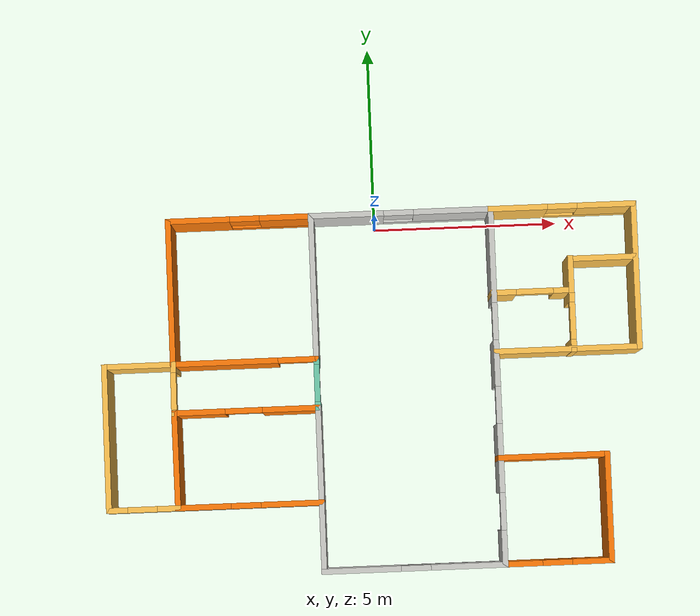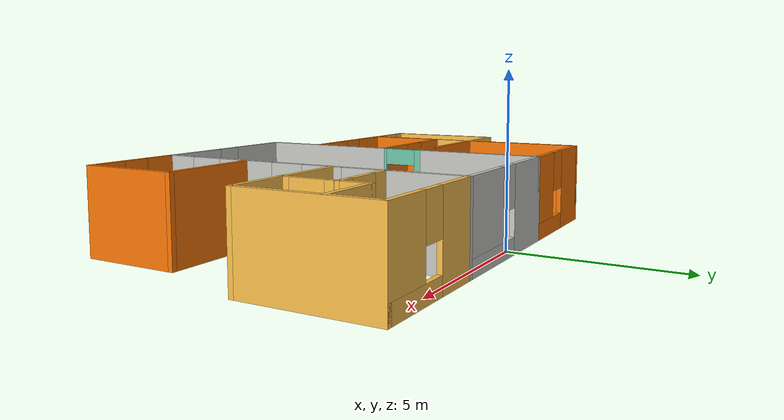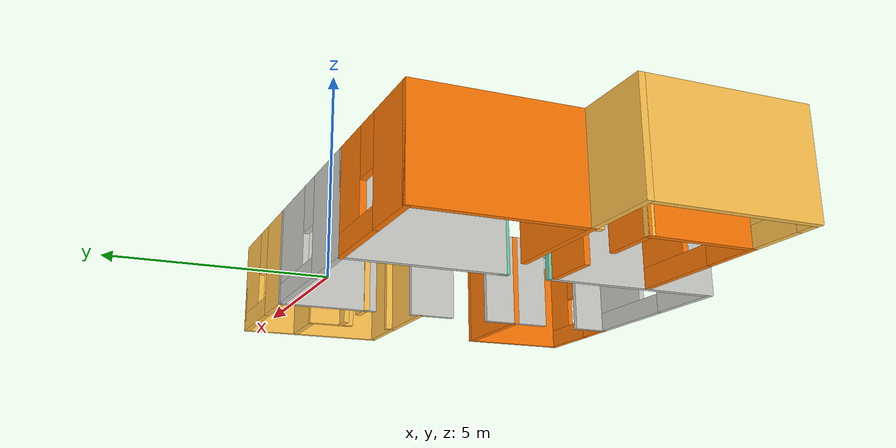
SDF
<?xml version='1.0'?>
<sdf version='1.7'>
  <model name='building'>
    <pose>-0.21 -4.52504 0 0 -0 0</pose>
    <link name='Wall_0'>
      <pose>-3.425 4.77504 0 0 -0 0</pose>
      <visual name='Wall_0_Visual_0'>
        <pose>-1.13248 0 1.25 0 -0 0</pose>
        <geometry>
          <box>
            <size>1.73504 0.15 2.5</size>
          </box>
        </geometry>
        <material>
          <script>
            <uri>file://media/materials/scripts/gazebo.material</uri>
            <name>Gazebo/Grey</name>
          </script>
          <ambient>0.996078 0.47451 0.0196078 1</ambient>
        </material>
        <meta>
          <layer>0</layer>
        </meta>
      </visual>
      <collision name='Wall_0_Collision_0'>
        <geometry>
          <box>
            <size>1.73504 0.15 2.5</size>
          </box>
        </geometry>
        <pose>-1.13248 0 1.25 0 -0 0</pose>
      </collision>
      <visual name='Wall_0_Visual_1'>
        <pose>0.867518 0 0.25 0 -0 0</pose>
        <geometry>
          <box>
            <size>2.26497 0.15 0.5</size>
          </box>
        </geometry>
        <material>
          <script>
            <uri>file://media/materials/scripts/gazebo.material</uri>
            <name>Gazebo/Grey</name>
          </script>
          <ambient>0.996078 0.47451 0.0196078 1</ambient>
        </material>
        <meta>
          <layer>0</layer>
        </meta>
      </visual>
      <collision name='Wall_0_Collision_1'>
        <geometry>
          <box>
            <size>2.26497 0.15 0.5</size>
          </box>
        </geometry>
        <pose>0.867518 0 0.25 0 -0 0</pose>
      </collision>
      <visual name='Wall_0_Visual_2'>
        <pose>1.26752 0 1.5 0 -0 0</pose>
        <geometry>
          <box>
            <size>1.46497 0.15 2</size>
          </box>
        </geometry>
        <material>
          <script>
            <uri>file://media/materials/scripts/gazebo.material</uri>
            <name>Gazebo/Grey</name>
          </script>
          <ambient>0.996078 0.47451 0.0196078 1</ambient>
        </material>
        <meta>
          <layer>0</layer>
        </meta>
      </visual>
      <collision name='Wall_0_Collision_2'>
        <geometry>
          <box>
            <size>1.46497 0.15 2</size>
          </box>
        </geometry>
        <pose>1.26752 0 1.5 0 -0 0</pose>
      </collision>
      <visual name='Wall_0_Visual_3'>
        <pose>0.135035 0 1.9 0 -0 0</pose>
        <geometry>
          <box>
            <size>0.8 0.15 1.2</size>
          </box>
        </geometry>
        <material>
          <script>
            <uri>file://media/materials/scripts/gazebo.material</uri>
            <name>Gazebo/Grey</name>
          </script>
          <ambient>0.996078 0.47451 0.0196078 1</ambient>
        </material>
        <meta>
          <layer>0</layer>
        </meta>
      </visual>
      <collision name='Wall_0_Collision_3'>
        <geometry>
          <box>
            <size>0.8 0.15 1.2</size>
          </box>
        </geometry>
        <pose>0.135035 0 1.9 0 -0 0</pose>
      </collision>
    </link>
    <link name='Wall_1'>
      <collision name='Wall_1_Collision'>
        <geometry>
          <box>
            <size>4 0.15 2.5</size>
          </box>
        </geometry>
        <pose>0 0 1.25 0 -0 0</pose>
      </collision>
      <visual name='Wall_1_Visual'>
        <pose>0 0 1.25 0 -0 0</pose>
        <geometry>
          <box>
            <size>4 0.15 2.5</size>
          </box>
        </geometry>
        <material>
          <script>
            <uri>file://media/materials/scripts/gazebo.material</uri>
            <name>Gazebo/CeilingTiled</name>
          </script>
          <ambient>0.435294 0.796078 0.67451 1</ambient>
        </material>
        <meta>
          <layer>0</layer>
        </meta>
      </visual>
      <pose>-1.5 2.85004 0 0 -0 -1.5708</pose>
    </link>
    <link name='Wall_18'>
      <pose>-1.5 0.269913 0 0 -0 -1.5708</pose>
      <visual name='Wall_18_Visual_0'>
        <pose>-0.61782 0 1.25 0 -0 0</pose>
        <geometry>
          <box>
            <size>0.225214 0.15 2.5</size>
          </box>
        </geometry>
        <material>
          <script>
            <uri>file://media/materials/scripts/gazebo.material</uri>
            <name>Gazebo/Grey</name>
          </script>
          <ambient>0.435294 0.796078 0.67451 1</ambient>
        </material>
        <meta>
          <layer>0</layer>
        </meta>
      </visual>
      <collision name='Wall_18_Collision_0'>
        <geometry>
          <box>
            <size>0.225214 0.15 2.5</size>
          </box>
        </geometry>
        <pose>-0.61782 0 1.25 0 -0 0</pose>
      </collision>
      <visual name='Wall_18_Visual_1'>
        <pose>0.612607 0 1.25 0 -0 0</pose>
        <geometry>
          <box>
            <size>0.235641 0.15 2.5</size>
          </box>
        </geometry>
        <material>
          <script>
            <uri>file://media/materials/scripts/gazebo.material</uri>
            <name>Gazebo/Grey</name>
          </script>
          <ambient>0.435294 0.796078 0.67451 1</ambient>
        </material>
        <meta>
          <layer>0</layer>
        </meta>
      </visual>
      <collision name='Wall_18_Collision_1'>
        <geometry>
          <box>
            <size>0.235641 0.15 2.5</size>
          </box>
        </geometry>
        <pose>0.612607 0 1.25 0 -0 0</pose>
      </collision>
      <visual name='Wall_18_Visual_2'>
        <pose>-0.005213 0 2.25 0 -0 0</pose>
        <geometry>
          <box>
            <size>1 0.15 0.5</size>
          </box>
        </geometry>
        <material>
          <script>
            <uri>file://media/materials/scripts/gazebo.material</uri>
            <name>Gazebo/Grey</name>
          </script>
          <ambient>0.435294 0.796078 0.67451 1</ambient>
        </material>
        <meta>
          <layer>0</layer>
        </meta>
      </visual>
      <collision name='Wall_18_Collision_2'>
        <geometry>
          <box>
            <size>1 0.15 0.5</size>
          </box>
        </geometry>
        <pose>-0.005213 0 2.25 0 -0 0</pose>
      </collision>
    </link>
    <link name='Wall_19'>
      <pose>-3.43815 -0.385217 0 0 -0 3.14159</pose>
      <visual name='Wall_19_Visual_0'>
        <pose>-1.21889 0 1.25 0 -0 0</pose>
        <geometry>
          <box>
            <size>1.56222 0.15 2.5</size>
          </box>
        </geometry>
        <material>
          <script>
            <uri>file://media/materials/scripts/gazebo.material</uri>
            <name>Gazebo/Grey</name>
          </script>
          <ambient>0.996078 0.47451 0.0196078 1</ambient>
        </material>
        <meta>
          <layer>0</layer>
        </meta>
      </visual>
      <collision name='Wall_19_Collision_0'>
        <geometry>
          <box>
            <size>1.56222 0.15 2.5</size>
          </box>
        </geometry>
        <pose>-1.21889 0 1.25 0 -0 0</pose>
      </collision>
      <visual name='Wall_19_Visual_1'>
        <pose>1.28111 0 1.25 0 -0 0</pose>
        <geometry>
          <box>
            <size>1.43778 0.15 2.5</size>
          </box>
        </geometry>
        <material>
          <script>
            <uri>file://media/materials/scripts/gazebo.material</uri>
            <name>Gazebo/Grey</name>
          </script>
          <ambient>0.996078 0.47451 0.0196078 1</ambient>
        </material>
        <meta>
          <layer>0</layer>
        </meta>
      </visual>
      <collision name='Wall_19_Collision_1'>
        <geometry>
          <box>
            <size>1.43778 0.15 2.5</size>
          </box>
        </geometry>
        <pose>1.28111 0 1.25 0 -0 0</pose>
      </collision>
      <visual name='Wall_19_Visual_2'>
        <pose>0.06222 0 2.25 0 -0 0</pose>
        <geometry>
          <box>
            <size>1 0.15 0.5</size>
          </box>
        </geometry>
        <material>
          <script>
            <uri>file://media/materials/scripts/gazebo.material</uri>
            <name>Gazebo/Grey</name>
          </script>
          <ambient>0.996078 0.47451 0.0196078 1</ambient>
        </material>
        <meta>
          <layer>0</layer>
        </meta>
      </visual>
      <collision name='Wall_19_Collision_2'>
        <geometry>
          <box>
            <size>1 0.15 0.5</size>
          </box>
        </geometry>
        <pose>0.06222 0 2.25 0 -0 0</pose>
      </collision>
    </link>
    <link name='Wall_2'>
      <pose>-3.425 0.925044 0 0 -0 3.14159</pose>
      <visual name='Wall_2_Visual_0'>
        <pose>-1.94873 0 1.25 0 -0 0</pose>
        <geometry>
          <box>
            <size>0.102534 0.15 2.5</size>
          </box>
        </geometry>
        <material>
          <script>
            <uri>file://media/materials/scripts/gazebo.material</uri>
            <name>Gazebo/Grey</name>
          </script>
          <ambient>0.996078 0.47451 0.0196078 1</ambient>
        </material>
        <meta>
          <layer>0</layer>
        </meta>
      </visual>
      <collision name='Wall_2_Collision_0'>
        <geometry>
          <box>
            <size>0.102534 0.15 2.5</size>
          </box>
        </geometry>
        <pose>-1.94873 0 1.25 0 -0 0</pose>
      </collision>
      <visual name='Wall_2_Visual_1'>
        <pose>0.551267 0 1.25 0 -0 0</pose>
        <geometry>
          <box>
            <size>2.89747 0.15 2.5</size>
          </box>
        </geometry>
        <material>
          <script>
            <uri>file://media/materials/scripts/gazebo.material</uri>
            <name>Gazebo/Grey</name>
          </script>
          <ambient>0.996078 0.47451 0.0196078 1</ambient>
        </material>
        <meta>
          <layer>0</layer>
        </meta>
      </visual>
      <collision name='Wall_2_Collision_1'>
        <geometry>
          <box>
            <size>2.89747 0.15 2.5</size>
          </box>
        </geometry>
        <pose>0.551267 0 1.25 0 -0 0</pose>
      </collision>
      <visual name='Wall_2_Visual_2'>
        <pose>-1.39747 0 2.25 0 -0 0</pose>
        <geometry>
          <box>
            <size>1 0.15 0.5</size>
          </box>
        </geometry>
        <material>
          <script>
            <uri>file://media/materials/scripts/gazebo.material</uri>
            <name>Gazebo/Grey</name>
          </script>
          <ambient>0.996078 0.47451 0.0196078 1</ambient>
        </material>
        <meta>
          <layer>0</layer>
        </meta>
      </visual>
      <collision name='Wall_2_Collision_2'>
        <geometry>
          <box>
            <size>1 0.15 0.5</size>
          </box>
        </geometry>
        <pose>-1.39747 0 2.25 0 -0 0</pose>
      </collision>
    </link>
    <link name='Wall_21'>
      <collision name='Wall_21_Collision'>
        <geometry>
          <box>
            <size>2 0.15 2.5</size>
          </box>
        </geometry>
        <pose>0 0 1.25 0 -0 0</pose>
      </collision>
      <visual name='Wall_21_Visual'>
        <pose>0 0 1.25 0 -0 0</pose>
        <geometry>
          <box>
            <size>2 0.15 2.5</size>
          </box>
        </geometry>
        <material>
          <script>
            <uri>file://media/materials/scripts/gazebo.material</uri>
            <name>Gazebo/Grey</name>
          </script>
          <ambient>1 0.764706 0.305882 1</ambient>
        </material>
        <meta>
          <layer>0</layer>
        </meta>
      </visual>
      <pose>-6.275 0.925044 0 0 -0 3.14159</pose>
    </link>
    <link name='Wall_22'>
      <collision name='Wall_22_Collision'>
        <geometry>
          <box>
            <size>4 0.15 2.5</size>
          </box>
        </geometry>
        <pose>0 0 1.25 0 -0 0</pose>
      </collision>
      <visual name='Wall_22_Visual'>
        <pose>0 0 1.25 0 -0 0</pose>
        <geometry>
          <box>
            <size>4 0.15 2.5</size>
          </box>
        </geometry>
        <material>
          <script>
            <uri>file://media/materials/scripts/gazebo.material</uri>
            <name>Gazebo/Grey</name>
          </script>
          <ambient>1 0.764706 0.305882 1</ambient>
        </material>
        <meta>
          <layer>0</layer>
        </meta>
      </visual>
      <pose>-7.2 -0.999956 0 0 -0 -1.5708</pose>
    </link>
    <link name='Wall_24'>
      <collision name='Wall_24_Collision'>
        <geometry>
          <box>
            <size>2.53978 0.15 2.5</size>
          </box>
        </geometry>
        <pose>0 0 1.25 0 -0 0</pose>
      </collision>
      <visual name='Wall_24_Visual'>
        <pose>0 0 1.25 0 -0 0</pose>
        <geometry>
          <box>
            <size>2.53978 0.15 2.5</size>
          </box>
        </geometry>
        <material>
          <script>
            <uri>file://media/materials/scripts/gazebo.material</uri>
            <name>Gazebo/Grey</name>
          </script>
          <ambient>0.996078 0.47451 0.0196078 1</ambient>
        </material>
        <meta>
          <layer>0</layer>
        </meta>
      </visual>
      <pose>-5.35658 -1.58009 0 0 -0 -1.56529</pose>
    </link>
    <link name='Wall_27'>
      <pose>-6.275 -2.92496 0 0 -0 0</pose>
      <visual name='Wall_27_Visual_0'>
        <pose>-0.713195 0 1.25 0 -0 0</pose>
        <geometry>
          <box>
            <size>0.573611 0.15 2.5</size>
          </box>
        </geometry>
        <material>
          <script>
            <uri>file://media/materials/scripts/gazebo.material</uri>
            <name>Gazebo/Grey</name>
          </script>
          <ambient>1 0.764706 0.305882 1</ambient>
        </material>
        <meta>
          <layer>0</layer>
        </meta>
      </visual>
      <collision name='Wall_27_Collision_0'>
        <geometry>
          <box>
            <size>0.573611 0.15 2.5</size>
          </box>
        </geometry>
        <pose>-0.713195 0 1.25 0 -0 0</pose>
      </collision>
      <visual name='Wall_27_Visual_1'>
        <pose>0.286805 0 0.25 0 -0 0</pose>
        <geometry>
          <box>
            <size>1.42639 0.15 0.5</size>
          </box>
        </geometry>
        <material>
          <script>
            <uri>file://media/materials/scripts/gazebo.material</uri>
            <name>Gazebo/Grey</name>
          </script>
          <ambient>1 0.764706 0.305882 1</ambient>
        </material>
        <meta>
          <layer>0</layer>
        </meta>
      </visual>
      <collision name='Wall_27_Collision_1'>
        <geometry>
          <box>
            <size>1.42639 0.15 0.5</size>
          </box>
        </geometry>
        <pose>0.286805 0 0.25 0 -0 0</pose>
      </collision>
      <visual name='Wall_27_Visual_2'>
        <pose>0.686805 0 1.5 0 -0 0</pose>
        <geometry>
          <box>
            <size>0.626389 0.15 2</size>
          </box>
        </geometry>
        <material>
          <script>
            <uri>file://media/materials/scripts/gazebo.material</uri>
            <name>Gazebo/Grey</name>
          </script>
          <ambient>1 0.764706 0.305882 1</ambient>
        </material>
        <meta>
          <layer>0</layer>
        </meta>
      </visual>
      <collision name='Wall_27_Collision_2'>
        <geometry>
          <box>
            <size>0.626389 0.15 2</size>
          </box>
        </geometry>
        <pose>0.686805 0 1.5 0 -0 0</pose>
      </collision>
      <visual name='Wall_27_Visual_3'>
        <pose>-0.026389 0 1.9 0 -0 0</pose>
        <geometry>
          <box>
            <size>0.8 0.15 1.2</size>
          </box>
        </geometry>
        <material>
          <script>
            <uri>file://media/materials/scripts/gazebo.material</uri>
            <name>Gazebo/Grey</name>
          </script>
          <ambient>1 0.764706 0.305882 1</ambient>
        </material>
        <meta>
          <layer>0</layer>
        </meta>
      </visual>
      <collision name='Wall_27_Collision_3'>
        <geometry>
          <box>
            <size>0.8 0.15 1.2</size>
          </box>
        </geometry>
        <pose>-0.026389 0 1.9 0 -0 0</pose>
      </collision>
    </link>
    <link name='Wall_3'>
      <collision name='Wall_3_Collision'>
        <geometry>
          <box>
            <size>4 0.15 2.5</size>
          </box>
        </geometry>
        <pose>0 0 1.25 0 -0 0</pose>
      </collision>
      <visual name='Wall_3_Visual'>
        <pose>0 0 1.25 0 -0 0</pose>
        <geometry>
          <box>
            <size>4 0.15 2.5</size>
          </box>
        </geometry>
        <material>
          <script>
            <uri>file://media/materials/scripts/gazebo.material</uri>
            <name>Gazebo/Grey</name>
          </script>
          <ambient>0.996078 0.47451 0.0196078 1</ambient>
        </material>
        <meta>
          <layer>0</layer>
        </meta>
      </visual>
      <pose>-5.35 2.85004 0 0 -0 1.5708</pose>
    </link>
    <link name='Wall_31'>
      <collision name='Wall_31_Collision'>
        <geometry>
          <box>
            <size>4.53992 0.15 2.5</size>
          </box>
        </geometry>
        <pose>0 0 1.25 0 -0 0</pose>
      </collision>
      <visual name='Wall_31_Visual'>
        <pose>0 0 1.25 0 -0 0</pose>
        <geometry>
          <box>
            <size>4.53992 0.15 2.5</size>
          </box>
        </geometry>
        <material>
          <script>
            <uri>file://media/materials/scripts/gazebo.material</uri>
            <name>Gazebo/CeilingTiled</name>
          </script>
          <ambient>0.435294 0.796078 0.67451 1</ambient>
        </material>
        <meta>
          <layer>0</layer>
        </meta>
      </visual>
      <pose>-1.5 -2.58009 0 0 -0 -1.5708</pose>
    </link>
    <link name='Wall_32'>
      <pose>0.925 -4.77496 0 0 -0 0</pose>
      <visual name='Wall_32_Visual_0'>
        <pose>-1.43371 0 1.25 0 -0 0</pose>
        <geometry>
          <box>
            <size>2.13259 0.15 2.5</size>
          </box>
        </geometry>
        <material>
          <script>
            <uri>file://media/materials/scripts/gazebo.material</uri>
            <name>Gazebo/CeilingTiled</name>
          </script>
          <ambient>0.435294 0.796078 0.67451 1</ambient>
        </material>
        <meta>
          <layer>0</layer>
        </meta>
      </visual>
      <collision name='Wall_32_Collision_0'>
        <geometry>
          <box>
            <size>2.13259 0.15 2.5</size>
          </box>
        </geometry>
        <pose>-1.43371 0 1.25 0 -0 0</pose>
      </collision>
      <visual name='Wall_32_Visual_1'>
        <pose>1.06629 0 0.25 0 -0 0</pose>
        <geometry>
          <box>
            <size>2.86741 0.15 0.5</size>
          </box>
        </geometry>
        <material>
          <script>
            <uri>file://media/materials/scripts/gazebo.material</uri>
            <name>Gazebo/CeilingTiled</name>
          </script>
          <ambient>0.435294 0.796078 0.67451 1</ambient>
        </material>
        <meta>
          <layer>0</layer>
        </meta>
      </visual>
      <collision name='Wall_32_Collision_1'>
        <geometry>
          <box>
            <size>2.86741 0.15 0.5</size>
          </box>
        </geometry>
        <pose>1.06629 0 0.25 0 -0 0</pose>
      </collision>
      <visual name='Wall_32_Visual_2'>
        <pose>1.46629 0 1.5 0 -0 0</pose>
        <geometry>
          <box>
            <size>2.06741 0.15 2</size>
          </box>
        </geometry>
        <material>
          <script>
            <uri>file://media/materials/scripts/gazebo.material</uri>
            <name>Gazebo/CeilingTiled</name>
          </script>
          <ambient>0.435294 0.796078 0.67451 1</ambient>
        </material>
        <meta>
          <layer>0</layer>
        </meta>
      </visual>
      <collision name='Wall_32_Collision_2'>
        <geometry>
          <box>
            <size>2.06741 0.15 2</size>
          </box>
        </geometry>
        <pose>1.46629 0 1.5 0 -0 0</pose>
      </collision>
      <visual name='Wall_32_Visual_3'>
        <pose>0.03259 0 1.9 0 -0 0</pose>
        <geometry>
          <box>
            <size>0.8 0.15 1.2</size>
          </box>
        </geometry>
        <material>
          <script>
            <uri>file://media/materials/scripts/gazebo.material</uri>
            <name>Gazebo/CeilingTiled</name>
          </script>
          <ambient>0.435294 0.796078 0.67451 1</ambient>
        </material>
        <meta>
          <layer>0</layer>
        </meta>
      </visual>
      <collision name='Wall_32_Collision_3'>
        <geometry>
          <box>
            <size>0.8 0.15 1.2</size>
          </box>
        </geometry>
        <pose>0.03259 0 1.9 0 -0 0</pose>
      </collision>
    </link>
    <link name='Wall_33'>
      <pose>3.35 4.4e-05 0 0 -0 1.5708</pose>
      <visual name='Wall_33_Visual_0'>
        <pose>-4.3522 0 1.25 0 -0 0</pose>
        <geometry>
          <box>
            <size>0.995593 0.15 2.5</size>
          </box>
        </geometry>
        <material>
          <script>
            <uri>file://media/materials/scripts/gazebo.material</uri>
            <name>Gazebo/CeilingTiled</name>
          </script>
          <ambient>0.435294 0.796078 0.67451 1</ambient>
        </material>
        <meta>
          <layer>0</layer>
        </meta>
      </visual>
      <collision name='Wall_33_Collision_0'>
        <geometry>
          <box>
            <size>0.995593 0.15 2.5</size>
          </box>
        </geometry>
        <pose>-4.3522 0 1.25 0 -0 0</pose>
      </collision>
      <visual name='Wall_33_Visual_1'>
        <pose>-1.9276 0 1.25 0 -0 0</pose>
        <geometry>
          <box>
            <size>1.85362 0.15 2.5</size>
          </box>
        </geometry>
        <material>
          <script>
            <uri>file://media/materials/scripts/gazebo.material</uri>
            <name>Gazebo/CeilingTiled</name>
          </script>
          <ambient>0.435294 0.796078 0.67451 1</ambient>
        </material>
        <meta>
          <layer>0</layer>
        </meta>
      </visual>
      <collision name='Wall_33_Collision_1'>
        <geometry>
          <box>
            <size>1.85362 0.15 2.5</size>
          </box>
        </geometry>
        <pose>-1.9276 0 1.25 0 -0 0</pose>
      </collision>
      <visual name='Wall_33_Visual_2'>
        <pose>0.623566 0 1.25 0 -0 0</pose>
        <geometry>
          <box>
            <size>1.2487 0.15 2.5</size>
          </box>
        </geometry>
        <material>
          <script>
            <uri>file://media/materials/scripts/gazebo.material</uri>
            <name>Gazebo/CeilingTiled</name>
          </script>
          <ambient>0.435294 0.796078 0.67451 1</ambient>
        </material>
        <meta>
          <layer>0</layer>
        </meta>
      </visual>
      <collision name='Wall_33_Collision_2'>
        <geometry>
          <box>
            <size>1.2487 0.15 2.5</size>
          </box>
        </geometry>
        <pose>0.623566 0 1.25 0 -0 0</pose>
      </collision>
      <visual name='Wall_33_Visual_3'>
        <pose>3.54896 0 1.25 0 -0 0</pose>
        <geometry>
          <box>
            <size>2.60208 0.15 2.5</size>
          </box>
        </geometry>
        <material>
          <script>
            <uri>file://media/materials/scripts/gazebo.material</uri>
            <name>Gazebo/CeilingTiled</name>
          </script>
          <ambient>0.435294 0.796078 0.67451 1</ambient>
        </material>
        <meta>
          <layer>0</layer>
        </meta>
      </visual>
      <collision name='Wall_33_Collision_3'>
        <geometry>
          <box>
            <size>2.60208 0.15 2.5</size>
          </box>
        </geometry>
        <pose>3.54896 0 1.25 0 -0 0</pose>
      </collision>
      <visual name='Wall_33_Visual_4'>
        <pose>-3.35441 0 2.25 0 -0 0</pose>
        <geometry>
          <box>
            <size>1 0.15 0.5</size>
          </box>
        </geometry>
        <material>
          <script>
            <uri>file://media/materials/scripts/gazebo.material</uri>
            <name>Gazebo/CeilingTiled</name>
          </script>
          <ambient>0.435294 0.796078 0.67451 1</ambient>
        </material>
        <meta>
          <layer>0</layer>
        </meta>
      </visual>
      <collision name='Wall_33_Collision_4'>
        <geometry>
          <box>
            <size>1 0.15 0.5</size>
          </box>
        </geometry>
        <pose>-3.35441 0 2.25 0 -0 0</pose>
      </collision>
      <visual name='Wall_33_Visual_5'>
        <pose>-0.500786 0 2.25 0 -0 0</pose>
        <geometry>
          <box>
            <size>1 0.15 0.5</size>
          </box>
        </geometry>
        <material>
          <script>
            <uri>file://media/materials/scripts/gazebo.material</uri>
            <name>Gazebo/CeilingTiled</name>
          </script>
          <ambient>0.435294 0.796078 0.67451 1</ambient>
        </material>
        <meta>
          <layer>0</layer>
        </meta>
      </visual>
      <collision name='Wall_33_Collision_5'>
        <geometry>
          <box>
            <size>1 0.15 0.5</size>
          </box>
        </geometry>
        <pose>-0.500786 0 2.25 0 -0 0</pose>
      </collision>
      <visual name='Wall_33_Visual_6'>
        <pose>1.74792 0 2.25 0 -0 0</pose>
        <geometry>
          <box>
            <size>1 0.15 0.5</size>
          </box>
        </geometry>
        <material>
          <script>
            <uri>file://media/materials/scripts/gazebo.material</uri>
            <name>Gazebo/CeilingTiled</name>
          </script>
          <ambient>0.435294 0.796078 0.67451 1</ambient>
        </material>
        <meta>
          <layer>0</layer>
        </meta>
      </visual>
      <collision name='Wall_33_Collision_6'>
        <geometry>
          <box>
            <size>1 0.15 0.5</size>
          </box>
        </geometry>
        <pose>1.74792 0 2.25 0 -0 0</pose>
      </collision>
    </link>
    <link name='Wall_35'>
      <pose>0.925 4.77504 0 0 -0 0</pose>
      <visual name='Wall_35_Visual_0'>
        <pose>-1.47973 0 1.25 0 -0 0</pose>
        <geometry>
          <box>
            <size>2.04054 0.15 2.5</size>
          </box>
        </geometry>
        <material>
          <script>
            <uri>file://media/materials/scripts/gazebo.material</uri>
            <name>Gazebo/CeilingTiled</name>
          </script>
          <ambient>0.435294 0.796078 0.67451 1</ambient>
        </material>
        <meta>
          <layer>0</layer>
        </meta>
      </visual>
      <collision name='Wall_35_Collision_0'>
        <geometry>
          <box>
            <size>2.04054 0.15 2.5</size>
          </box>
        </geometry>
        <pose>-1.47973 0 1.25 0 -0 0</pose>
      </collision>
      <visual name='Wall_35_Visual_1'>
        <pose>1.02027 0 0.25 0 -0 0</pose>
        <geometry>
          <box>
            <size>2.95946 0.15 0.5</size>
          </box>
        </geometry>
        <material>
          <script>
            <uri>file://media/materials/scripts/gazebo.material</uri>
            <name>Gazebo/CeilingTiled</name>
          </script>
          <ambient>0.435294 0.796078 0.67451 1</ambient>
        </material>
        <meta>
          <layer>0</layer>
        </meta>
      </visual>
      <collision name='Wall_35_Collision_1'>
        <geometry>
          <box>
            <size>2.95946 0.15 0.5</size>
          </box>
        </geometry>
        <pose>1.02027 0 0.25 0 -0 0</pose>
      </collision>
      <visual name='Wall_35_Visual_2'>
        <pose>1.42027 0 1.5 0 -0 0</pose>
        <geometry>
          <box>
            <size>2.15946 0.15 2</size>
          </box>
        </geometry>
        <material>
          <script>
            <uri>file://media/materials/scripts/gazebo.material</uri>
            <name>Gazebo/CeilingTiled</name>
          </script>
          <ambient>0.435294 0.796078 0.67451 1</ambient>
        </material>
        <meta>
          <layer>0</layer>
        </meta>
      </visual>
      <collision name='Wall_35_Collision_2'>
        <geometry>
          <box>
            <size>2.15946 0.15 2</size>
          </box>
        </geometry>
        <pose>1.42027 0 1.5 0 -0 0</pose>
      </collision>
      <visual name='Wall_35_Visual_3'>
        <pose>-0.059462 0 1.9 0 -0 0</pose>
        <geometry>
          <box>
            <size>0.8 0.15 1.2</size>
          </box>
        </geometry>
        <material>
          <script>
            <uri>file://media/materials/scripts/gazebo.material</uri>
            <name>Gazebo/CeilingTiled</name>
          </script>
          <ambient>0.435294 0.796078 0.67451 1</ambient>
        </material>
        <meta>
          <layer>0</layer>
        </meta>
      </visual>
      <collision name='Wall_35_Collision_3'>
        <geometry>
          <box>
            <size>0.8 0.15 1.2</size>
          </box>
        </geometry>
        <pose>-0.059462 0 1.9 0 -0 0</pose>
      </collision>
    </link>
    <link name='Wall_37'>
      <pose>-3.425 -2.92496 0 0 -0 0</pose>
      <visual name='Wall_37_Visual_0'>
        <pose>-1.25083 0 1.25 0 -0 0</pose>
        <geometry>
          <box>
            <size>1.49833 0.15 2.5</size>
          </box>
        </geometry>
        <material>
          <script>
            <uri>file://media/materials/scripts/gazebo.material</uri>
            <name>Gazebo/Grey</name>
          </script>
          <ambient>0.996078 0.47451 0.0196078 1</ambient>
        </material>
        <meta>
          <layer>0</layer>
        </meta>
      </visual>
      <collision name='Wall_37_Collision_0'>
        <geometry>
          <box>
            <size>1.49833 0.15 2.5</size>
          </box>
        </geometry>
        <pose>-1.25083 0 1.25 0 -0 0</pose>
      </collision>
      <visual name='Wall_37_Visual_1'>
        <pose>0.749165 0 0.25 0 -0 0</pose>
        <geometry>
          <box>
            <size>2.50167 0.15 0.5</size>
          </box>
        </geometry>
        <material>
          <script>
            <uri>file://media/materials/scripts/gazebo.material</uri>
            <name>Gazebo/Grey</name>
          </script>
          <ambient>0.996078 0.47451 0.0196078 1</ambient>
        </material>
        <meta>
          <layer>0</layer>
        </meta>
      </visual>
      <collision name='Wall_37_Collision_1'>
        <geometry>
          <box>
            <size>2.50167 0.15 0.5</size>
          </box>
        </geometry>
        <pose>0.749165 0 0.25 0 -0 0</pose>
      </collision>
      <visual name='Wall_37_Visual_2'>
        <pose>1.14916 0 1.5 0 -0 0</pose>
        <geometry>
          <box>
            <size>1.70167 0.15 2</size>
          </box>
        </geometry>
        <material>
          <script>
            <uri>file://media/materials/scripts/gazebo.material</uri>
            <name>Gazebo/Grey</name>
          </script>
          <ambient>0.996078 0.47451 0.0196078 1</ambient>
        </material>
        <meta>
          <layer>0</layer>
        </meta>
      </visual>
      <collision name='Wall_37_Collision_2'>
        <geometry>
          <box>
            <size>1.70167 0.15 2</size>
          </box>
        </geometry>
        <pose>1.14916 0 1.5 0 -0 0</pose>
      </collision>
      <visual name='Wall_37_Visual_3'>
        <pose>-0.101671 0 1.9 0 -0 0</pose>
        <geometry>
          <box>
            <size>0.8 0.15 1.2</size>
          </box>
        </geometry>
        <material>
          <script>
            <uri>file://media/materials/scripts/gazebo.material</uri>
            <name>Gazebo/Grey</name>
          </script>
          <ambient>0.996078 0.47451 0.0196078 1</ambient>
        </material>
        <meta>
          <layer>0</layer>
        </meta>
      </visual>
      <collision name='Wall_37_Collision_3'>
        <geometry>
          <box>
            <size>0.8 0.15 1.2</size>
          </box>
        </geometry>
        <pose>-0.101671 0 1.9 0 -0 0</pose>
      </collision>
    </link>
    <link name='Wall_39'>
      <pose>5.275 4.77504 0 0 -0 0</pose>
      <visual name='Wall_39_Visual_0'>
        <pose>-1.19548 0 1.25 0 -0 0</pose>
        <geometry>
          <box>
            <size>1.60905 0.15 2.5</size>
          </box>
        </geometry>
        <material>
          <script>
            <uri>file://media/materials/scripts/gazebo.material</uri>
            <name>Gazebo/Grey</name>
          </script>
          <ambient>1 0.764706 0.305882 1</ambient>
        </material>
        <meta>
          <layer>0</layer>
        </meta>
      </visual>
      <collision name='Wall_39_Collision_0'>
        <geometry>
          <box>
            <size>1.60905 0.15 2.5</size>
          </box>
        </geometry>
        <pose>-1.19548 0 1.25 0 -0 0</pose>
      </collision>
      <visual name='Wall_39_Visual_1'>
        <pose>0.804524 0 0.25 0 -0 0</pose>
        <geometry>
          <box>
            <size>2.39095 0.15 0.5</size>
          </box>
        </geometry>
        <material>
          <script>
            <uri>file://media/materials/scripts/gazebo.material</uri>
            <name>Gazebo/Grey</name>
          </script>
          <ambient>1 0.764706 0.305882 1</ambient>
        </material>
        <meta>
          <layer>0</layer>
        </meta>
      </visual>
      <collision name='Wall_39_Collision_1'>
        <geometry>
          <box>
            <size>2.39095 0.15 0.5</size>
          </box>
        </geometry>
        <pose>0.804524 0 0.25 0 -0 0</pose>
      </collision>
      <visual name='Wall_39_Visual_2'>
        <pose>1.20452 0 1.5 0 -0 0</pose>
        <geometry>
          <box>
            <size>1.59095 0.15 2</size>
          </box>
        </geometry>
        <material>
          <script>
            <uri>file://media/materials/scripts/gazebo.material</uri>
            <name>Gazebo/Grey</name>
          </script>
          <ambient>1 0.764706 0.305882 1</ambient>
        </material>
        <meta>
          <layer>0</layer>
        </meta>
      </visual>
      <collision name='Wall_39_Collision_2'>
        <geometry>
          <box>
            <size>1.59095 0.15 2</size>
          </box>
        </geometry>
        <pose>1.20452 0 1.5 0 -0 0</pose>
      </collision>
      <visual name='Wall_39_Visual_3'>
        <pose>0.009047 0 1.9 0 -0 0</pose>
        <geometry>
          <box>
            <size>0.8 0.15 1.2</size>
          </box>
        </geometry>
        <material>
          <script>
            <uri>file://media/materials/scripts/gazebo.material</uri>
            <name>Gazebo/Grey</name>
          </script>
          <ambient>1 0.764706 0.305882 1</ambient>
        </material>
        <meta>
          <layer>0</layer>
        </meta>
      </visual>
      <collision name='Wall_39_Collision_3'>
        <geometry>
          <box>
            <size>0.8 0.15 1.2</size>
          </box>
        </geometry>
        <pose>0.009047 0 1.9 0 -0 0</pose>
      </collision>
    </link>
    <link name='Wall_40'>
      <collision name='Wall_40_Collision'>
        <geometry>
          <box>
            <size>4 0.15 2.5</size>
          </box>
        </geometry>
        <pose>0 0 1.25 0 -0 0</pose>
      </collision>
      <visual name='Wall_40_Visual'>
        <pose>0 0 1.25 0 -0 0</pose>
        <geometry>
          <box>
            <size>4 0.15 2.5</size>
          </box>
        </geometry>
        <material>
          <script>
            <uri>file://media/materials/scripts/gazebo.material</uri>
            <name>Gazebo/Grey</name>
          </script>
          <ambient>1 0.764706 0.305882 1</ambient>
        </material>
        <meta>
          <layer>0</layer>
        </meta>
      </visual>
      <pose>7.2 2.85004 0 0 -0 -1.5708</pose>
    </link>
    <link name='Wall_41'>
      <collision name='Wall_41_Collision'>
        <geometry>
          <box>
            <size>4 0.15 2.5</size>
          </box>
        </geometry>
        <pose>0 0 1.25 0 -0 0</pose>
      </collision>
      <visual name='Wall_41_Visual'>
        <pose>0 0 1.25 0 -0 0</pose>
        <geometry>
          <box>
            <size>4 0.15 2.5</size>
          </box>
        </geometry>
        <material>
          <script>
            <uri>file://media/materials/scripts/gazebo.material</uri>
            <name>Gazebo/Grey</name>
          </script>
          <ambient>1 0.764706 0.305882 1</ambient>
        </material>
        <meta>
          <layer>0</layer>
        </meta>
      </visual>
      <pose>5.275 0.925044 0 0 -0 3.14159</pose>
    </link>
    <link name='Wall_43'>
      <pose>4.775 -4.77496 0 0 -0 0</pose>
      <visual name='Wall_43_Visual_0'>
        <pose>-0.965058 0 1.25 0 -0 0</pose>
        <geometry>
          <box>
            <size>1.06988 0.15 2.5</size>
          </box>
        </geometry>
        <material>
          <script>
            <uri>file://media/materials/scripts/gazebo.material</uri>
            <name>Gazebo/Grey</name>
          </script>
          <ambient>0.996078 0.47451 0.0196078 1</ambient>
        </material>
        <meta>
          <layer>0</layer>
        </meta>
      </visual>
      <collision name='Wall_43_Collision_0'>
        <geometry>
          <box>
            <size>1.06988 0.15 2.5</size>
          </box>
        </geometry>
        <pose>-0.965058 0 1.25 0 -0 0</pose>
      </collision>
      <visual name='Wall_43_Visual_1'>
        <pose>0.534942 0 0.25 0 -0 0</pose>
        <geometry>
          <box>
            <size>1.93012 0.15 0.5</size>
          </box>
        </geometry>
        <material>
          <script>
            <uri>file://media/materials/scripts/gazebo.material</uri>
            <name>Gazebo/Grey</name>
          </script>
          <ambient>0.996078 0.47451 0.0196078 1</ambient>
        </material>
        <meta>
          <layer>0</layer>
        </meta>
      </visual>
      <collision name='Wall_43_Collision_1'>
        <geometry>
          <box>
            <size>1.93012 0.15 0.5</size>
          </box>
        </geometry>
        <pose>0.534942 0 0.25 0 -0 0</pose>
      </collision>
      <visual name='Wall_43_Visual_2'>
        <pose>0.934942 0 1.5 0 -0 0</pose>
        <geometry>
          <box>
            <size>1.13012 0.15 2</size>
          </box>
        </geometry>
        <material>
          <script>
            <uri>file://media/materials/scripts/gazebo.material</uri>
            <name>Gazebo/Grey</name>
          </script>
          <ambient>0.996078 0.47451 0.0196078 1</ambient>
        </material>
        <meta>
          <layer>0</layer>
        </meta>
      </visual>
      <collision name='Wall_43_Collision_2'>
        <geometry>
          <box>
            <size>1.13012 0.15 2</size>
          </box>
        </geometry>
        <pose>0.934942 0 1.5 0 -0 0</pose>
      </collision>
      <visual name='Wall_43_Visual_3'>
        <pose>-0.030117 0 1.9 0 -0 0</pose>
        <geometry>
          <box>
            <size>0.8 0.15 1.2</size>
          </box>
        </geometry>
        <material>
          <script>
            <uri>file://media/materials/scripts/gazebo.material</uri>
            <name>Gazebo/Grey</name>
          </script>
          <ambient>0.996078 0.47451 0.0196078 1</ambient>
        </material>
        <meta>
          <layer>0</layer>
        </meta>
      </visual>
      <collision name='Wall_43_Collision_3'>
        <geometry>
          <box>
            <size>0.8 0.15 1.2</size>
          </box>
        </geometry>
        <pose>-0.030117 0 1.9 0 -0 0</pose>
      </collision>
    </link>
    <link name='Wall_44'>
      <collision name='Wall_44_Collision'>
        <geometry>
          <box>
            <size>3 0.15 2.5</size>
          </box>
        </geometry>
        <pose>0 0 1.25 0 -0 0</pose>
      </collision>
      <visual name='Wall_44_Visual'>
        <pose>0 0 1.25 0 -0 0</pose>
        <geometry>
          <box>
            <size>3 0.15 2.5</size>
          </box>
        </geometry>
        <material>
          <script>
            <uri>file://media/materials/scripts/gazebo.material</uri>
            <name>Gazebo/Grey</name>
          </script>
          <ambient>0.996078 0.47451 0.0196078 1</ambient>
        </material>
        <meta>
          <layer>0</layer>
        </meta>
      </visual>
      <pose>6.2 -3.34996 0 0 -0 1.5708</pose>
    </link>
    <link name='Wall_45'>
      <collision name='Wall_45_Collision'>
        <geometry>
          <box>
            <size>3 0.15 2.5</size>
          </box>
        </geometry>
        <pose>0 0 1.25 0 -0 0</pose>
      </collision>
      <visual name='Wall_45_Visual'>
        <pose>0 0 1.25 0 -0 0</pose>
        <geometry>
          <box>
            <size>3 0.15 2.5</size>
          </box>
        </geometry>
        <material>
          <script>
            <uri>file://media/materials/scripts/gazebo.material</uri>
            <name>Gazebo/Grey</name>
          </script>
          <ambient>0.996078 0.47451 0.0196078 1</ambient>
        </material>
        <meta>
          <layer>0</layer>
        </meta>
      </visual>
      <pose>4.775 -1.92496 0 0 -0 3.14159</pose>
    </link>
    <link name='Wall_53'>
      <pose>-5.35658 0.269913 0 0 -0 -1.58083</pose>
      <visual name='Wall_53_Visual_0'>
        <pose>-0.583624 0 1.25 0 -0 0</pose>
        <geometry>
          <box>
            <size>0.293079 0.15 2.5</size>
          </box>
        </geometry>
        <material>
          <script>
            <uri>file://media/materials/scripts/gazebo.material</uri>
            <name>Gazebo/Grey</name>
          </script>
          <ambient>1 0.764706 0.305882 1</ambient>
        </material>
        <meta>
          <layer>0</layer>
        </meta>
      </visual>
      <collision name='Wall_53_Collision_0'>
        <geometry>
          <box>
            <size>0.293079 0.15 2.5</size>
          </box>
        </geometry>
        <pose>-0.583624 0 1.25 0 -0 0</pose>
      </collision>
      <visual name='Wall_53_Visual_1'>
        <pose>0.646539 0 1.25 0 -0 0</pose>
        <geometry>
          <box>
            <size>0.167249 0.15 2.5</size>
          </box>
        </geometry>
        <material>
          <script>
            <uri>file://media/materials/scripts/gazebo.material</uri>
            <name>Gazebo/Grey</name>
          </script>
          <ambient>1 0.764706 0.305882 1</ambient>
        </material>
        <meta>
          <layer>0</layer>
        </meta>
      </visual>
      <collision name='Wall_53_Collision_1'>
        <geometry>
          <box>
            <size>0.167249 0.15 2.5</size>
          </box>
        </geometry>
        <pose>0.646539 0 1.25 0 -0 0</pose>
      </collision>
      <visual name='Wall_53_Visual_2'>
        <pose>0.062915 0 2.25 0 -0 0</pose>
        <geometry>
          <box>
            <size>1 0.15 0.5</size>
          </box>
        </geometry>
        <material>
          <script>
            <uri>file://media/materials/scripts/gazebo.material</uri>
            <name>Gazebo/Grey</name>
          </script>
          <ambient>1 0.764706 0.305882 1</ambient>
        </material>
        <meta>
          <layer>0</layer>
        </meta>
      </visual>
      <collision name='Wall_53_Collision_2'>
        <geometry>
          <box>
            <size>1 0.15 0.5</size>
          </box>
        </geometry>
        <pose>0.062915 0 2.25 0 -0 0</pose>
      </collision>
    </link>
    <link name='Wall_55'>
      <pose>4.3878 2.51068 0 0 -0 0</pose>
      <visual name='Wall_55_Visual_0'>
        <pose>-0.785186 0 1.25 0 -0 0</pose>
        <geometry>
          <box>
            <size>0.679627 0.15 2.5</size>
          </box>
        </geometry>
        <material>
          <script>
            <uri>file://media/materials/scripts/gazebo.material</uri>
            <name>Gazebo/Grey</name>
          </script>
          <ambient>1 0.764706 0.305882 1</ambient>
        </material>
        <meta>
          <layer>0</layer>
        </meta>
      </visual>
      <collision name='Wall_55_Collision_0'>
        <geometry>
          <box>
            <size>0.679627 0.15 2.5</size>
          </box>
        </geometry>
        <pose>-0.785186 0 1.25 0 -0 0</pose>
      </collision>
      <visual name='Wall_55_Visual_1'>
        <pose>0.839814 0 1.25 0 -0 0</pose>
        <geometry>
          <box>
            <size>0.570373 0.15 2.5</size>
          </box>
        </geometry>
        <material>
          <script>
            <uri>file://media/materials/scripts/gazebo.material</uri>
            <name>Gazebo/Grey</name>
          </script>
          <ambient>1 0.764706 0.305882 1</ambient>
        </material>
        <meta>
          <layer>0</layer>
        </meta>
      </visual>
      <collision name='Wall_55_Collision_1'>
        <geometry>
          <box>
            <size>0.570373 0.15 2.5</size>
          </box>
        </geometry>
        <pose>0.839814 0 1.25 0 -0 0</pose>
      </collision>
      <visual name='Wall_55_Visual_2'>
        <pose>0.054627 0 2.25 0 -0 0</pose>
        <geometry>
          <box>
            <size>1 0.15 0.5</size>
          </box>
        </geometry>
        <material>
          <script>
            <uri>file://media/materials/scripts/gazebo.material</uri>
            <name>Gazebo/Grey</name>
          </script>
          <ambient>1 0.764706 0.305882 1</ambient>
        </material>
        <meta>
          <layer>0</layer>
        </meta>
      </visual>
      <collision name='Wall_55_Collision_2'>
        <geometry>
          <box>
            <size>1 0.15 0.5</size>
          </box>
        </geometry>
        <pose>0.054627 0 2.25 0 -0 0</pose>
      </collision>
    </link>
    <link name='Wall_57'>
      <collision name='Wall_57_Collision'>
        <geometry>
          <box>
            <size>1.75 0.15 2.5</size>
          </box>
        </geometry>
        <pose>0 0 1.25 0 -0 0</pose>
      </collision>
      <visual name='Wall_57_Visual'>
        <pose>0 0 1.25 0 -0 0</pose>
        <geometry>
          <box>
            <size>1.75 0.15 2.5</size>
          </box>
        </geometry>
        <material>
          <script>
            <uri>file://media/materials/scripts/gazebo.material</uri>
            <name>Gazebo/Grey</name>
          </script>
          <ambient>1 0.764706 0.305882 1</ambient>
        </material>
        <meta>
          <layer>0</layer>
        </meta>
      </visual>
      <pose>6.38245 3.34753 0 0 -0 0</pose>
    </link>
    <link name='Wall_59'>
      <collision name='Wall_59_Collision'>
        <geometry>
          <box>
            <size>1 0.15 2.5</size>
          </box>
        </geometry>
        <pose>0 0 1.25 0 -0 0</pose>
      </collision>
      <visual name='Wall_59_Visual'>
        <pose>0 0 1.25 0 -0 0</pose>
        <geometry>
          <box>
            <size>1 0.15 2.5</size>
          </box>
        </geometry>
        <material>
          <script>
            <uri>file://media/materials/scripts/gazebo.material</uri>
            <name>Gazebo/Grey</name>
          </script>
          <ambient>1 0.764706 0.305882 1</ambient>
        </material>
        <meta>
          <layer>0</layer>
        </meta>
      </visual>
      <pose>5.4378 2.93568 0 0 -0 1.5708</pose>
    </link>
    <link name='Wall_61'>
      <pose>5.4378 1.71068 0 0 -0 -1.5708</pose>
      <visual name='Wall_61_Visual_0'>
        <pose>-0.673265 0 1.25 0 -0 0</pose>
        <geometry>
          <box>
            <size>0.403471 0.15 2.5</size>
          </box>
        </geometry>
        <material>
          <script>
            <uri>file://media/materials/scripts/gazebo.material</uri>
            <name>Gazebo/Grey</name>
          </script>
          <ambient>1 0.764706 0.305882 1</ambient>
        </material>
        <meta>
          <layer>0</layer>
        </meta>
      </visual>
      <collision name='Wall_61_Collision_0'>
        <geometry>
          <box>
            <size>0.403471 0.15 2.5</size>
          </box>
        </geometry>
        <pose>-0.673265 0 1.25 0 -0 0</pose>
      </collision>
      <visual name='Wall_61_Visual_1'>
        <pose>0.701735 0 1.25 0 -0 0</pose>
        <geometry>
          <box>
            <size>0.346529 0.15 2.5</size>
          </box>
        </geometry>
        <material>
          <script>
            <uri>file://media/materials/scripts/gazebo.material</uri>
            <name>Gazebo/Grey</name>
          </script>
          <ambient>1 0.764706 0.305882 1</ambient>
        </material>
        <meta>
          <layer>0</layer>
        </meta>
      </visual>
      <collision name='Wall_61_Collision_1'>
        <geometry>
          <box>
            <size>0.346529 0.15 2.5</size>
          </box>
        </geometry>
        <pose>0.701735 0 1.25 0 -0 0</pose>
      </collision>
      <visual name='Wall_61_Visual_2'>
        <pose>0.028471 0 2.25 0 -0 0</pose>
        <geometry>
          <box>
            <size>1 0.15 0.5</size>
          </box>
        </geometry>
        <material>
          <script>
            <uri>file://media/materials/scripts/gazebo.material</uri>
            <name>Gazebo/Grey</name>
          </script>
          <ambient>1 0.764706 0.305882 1</ambient>
        </material>
        <meta>
          <layer>0</layer>
        </meta>
      </visual>
      <collision name='Wall_61_Collision_2'>
        <geometry>
          <box>
            <size>1 0.15 0.5</size>
          </box>
        </geometry>
        <pose>0.028471 0 2.25 0 -0 0</pose>
      </collision>
    </link>
    <static>1</static>
  </model>
</sdf>
